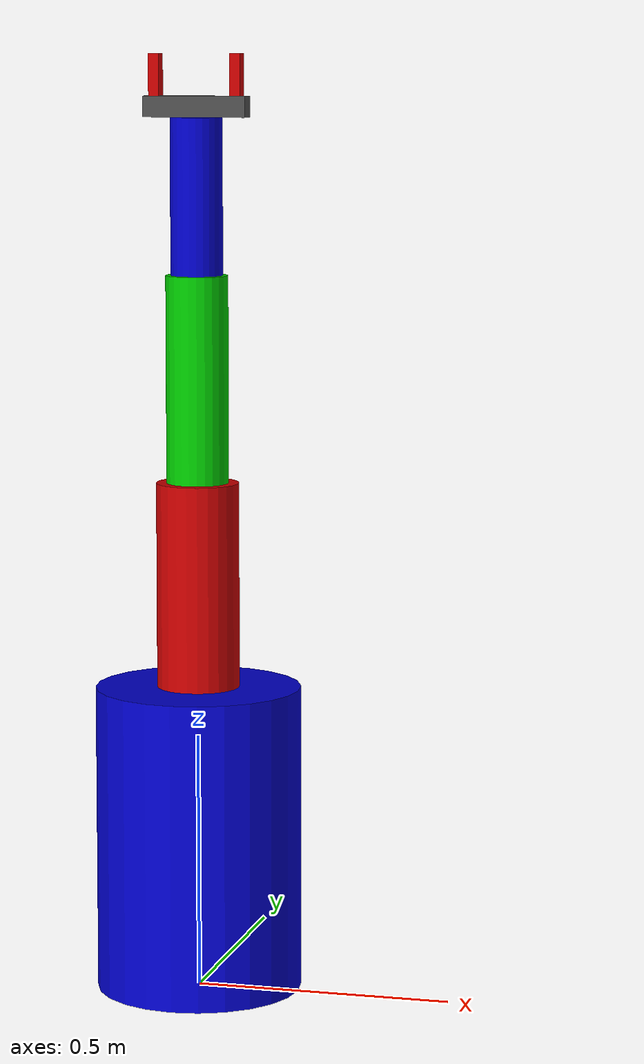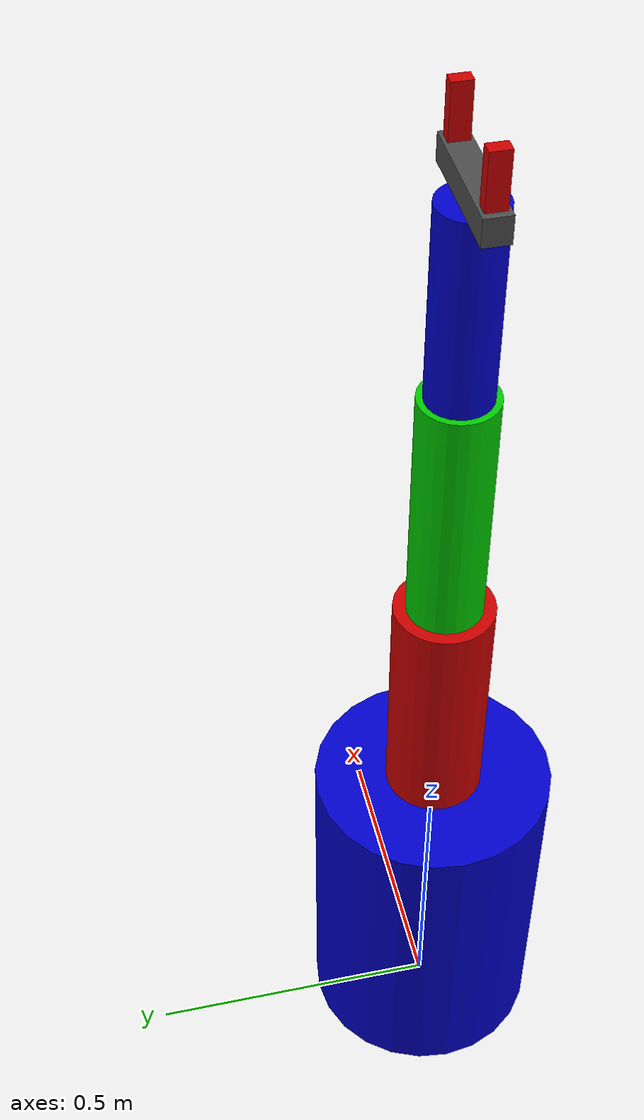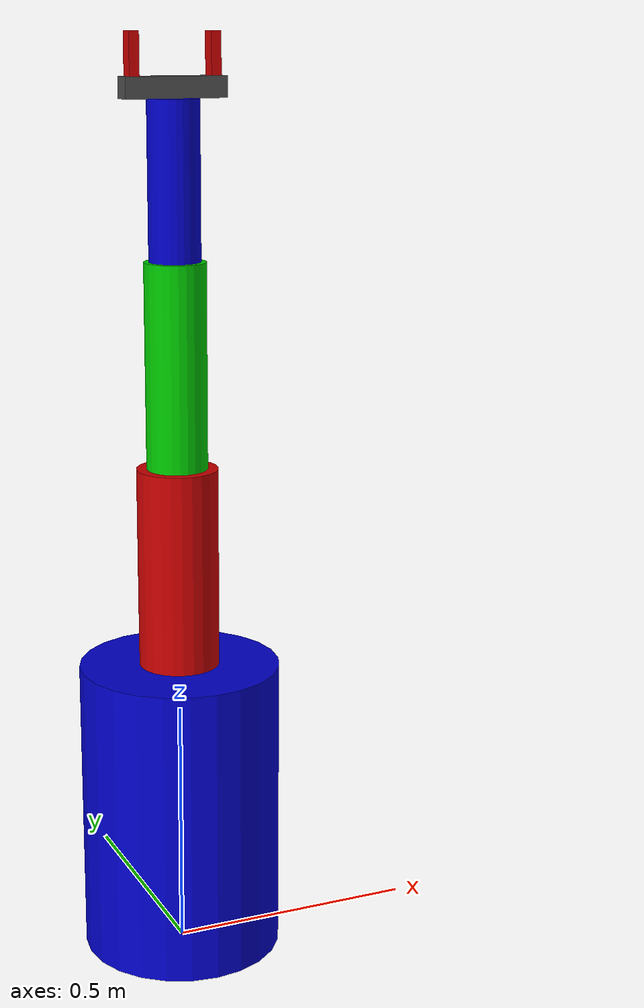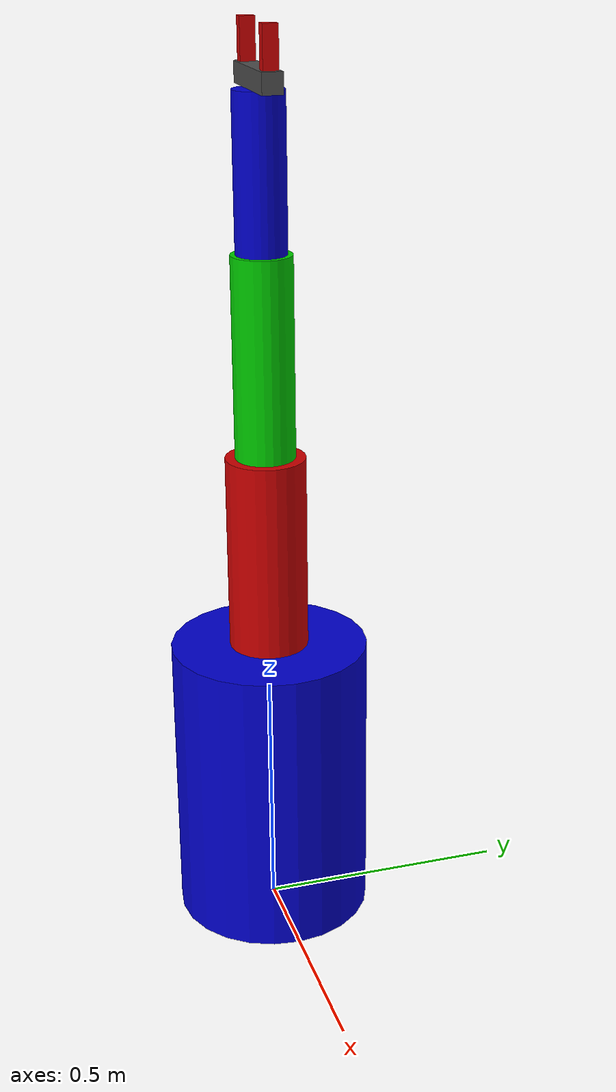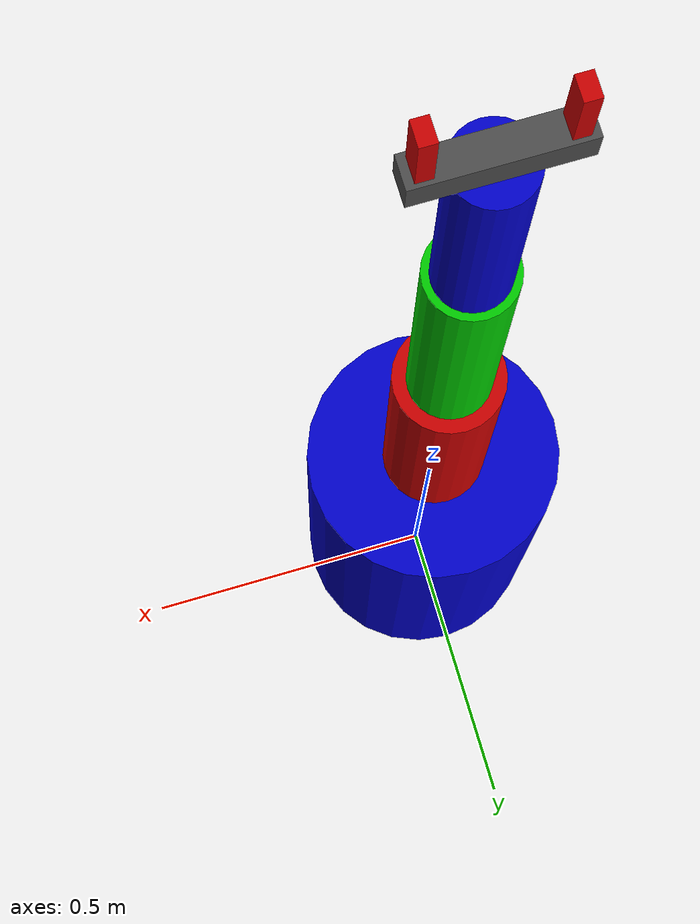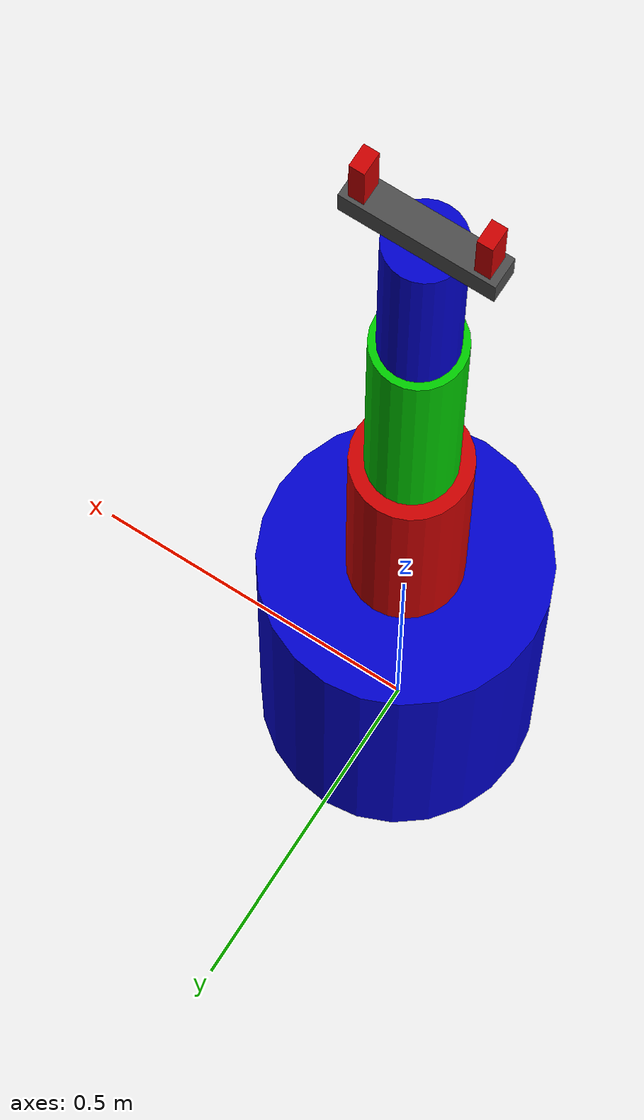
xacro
<?xml version="1.0"?>
<robot xmlns:xacro="http://www.ros.org/wiki/xacro" name="bulls_bot">

  <xacro:property name="b_rad" value="0.2" /><xacro:property name="b_len" value="0.6" />
  <xacro:property name="l1_rad" value="0.08" /><xacro:property name="l1_len" value="0.4" />
  <xacro:property name="l2_rad" value="0.06" /><xacro:property name="l2_len" value="0.4" />
  <xacro:property name="l3_rad" value="0.05" /><xacro:property name="l3_len" value="0.3" />

  <material name="blue"><color rgba="0.0 0.0 0.8 1.0" /></material>
  <material name="red"><color rgba="0.8 0.0 0.0 1.0" /></material>
  <material name="green"><color rgba="0.0 0.8 0.0 1.0" /></material>
  <material name="dark_grey"><color rgba="0.3 0.3 0.3 1.0" /></material>

  <xacro:macro name="make_link" params="name radius length color">
    <link name="${name}">
      <visual>
        <origin xyz="0 0 ${length/2}" rpy="0 0 0" />
        <geometry><cylinder radius="${radius}" length="${length}" /></geometry>
        <material name="${color}" />
      </visual>
      <collision>
        <origin xyz="0 0 ${length/2}" rpy="0 0 0" />
        <geometry><cylinder radius="${radius}" length="${length}" /></geometry>
      </collision>
    </link>
  </xacro:macro>

  <link name="base_link">
    <visual>
      <origin xyz="0 0 ${b_len/2}" rpy="0 0 0" />
      <geometry><cylinder radius="${b_rad}" length="${b_len}" /></geometry>
      <material name="blue" />
    </visual>
    <collision>
      <origin xyz="0 0 ${b_len/2}" rpy="0 0 0" />
      <geometry><cylinder radius="${b_rad}" length="${b_len}" /></geometry>
    </collision>
  </link>

  <xacro:make_link name="link_1" radius="${l1_rad}" length="${l1_len}" color="red" />
  <xacro:make_link name="link_2" radius="${l2_rad}" length="${l2_len}" color="green" />
  <xacro:make_link name="link_3" radius="${l3_rad}" length="${l3_len}" color="blue" />

  <joint name="arm_0_joint" type="revolute">
    <parent link="base_link"/><child link="link_1"/>
    <origin xyz="0 0 ${b_len}" rpy="0 0 0"/>
    <axis xyz="0 0 1"/>
    <limit lower="-3.1416" upper="3.1416" effort="10.0" velocity="1.0"/>
  </joint>

  <joint name="arm_1_joint" type="revolute">
    <parent link="link_1"/><child link="link_2"/>
    <origin xyz="0 0 ${l1_len}" rpy="0 0 0"/>
    <axis xyz="0 1 0"/>
    <limit lower="-1.5708" upper="1.5708" effort="10.0" velocity="1.0"/>
  </joint>

  <joint name="arm_2_joint" type="revolute">
    <parent link="link_2"/><child link="link_3"/>
    <origin xyz="0 0 ${l2_len}" rpy="0 0 0"/>
    <axis xyz="0 1 0"/>
    <limit lower="-2.0" upper="2.0" effort="10.0" velocity="1.0"/>
  </joint>

  <joint name="gripper_base_joint" type="fixed">
    <parent link="link_3"/><child link="gripper_base"/>
    <origin xyz="0 0 ${l3_len}" rpy="0 0 0"/>
  </joint>

  <link name="gripper_base">
    <visual>
      <origin xyz="0 0 0.02" rpy="0 0 0" /><geometry><box size="0.2 0.04 0.04" /></geometry>
      <material name="dark_grey" />
    </visual>
    <collision>
      <origin xyz="0 0 0.02" rpy="0 0 0" /><geometry><box size="0.2 0.04 0.04" /></geometry>
    </collision>
  </link>

  <joint name="gripper_finger_joint_1" type="prismatic">
    <parent link="gripper_base"/><child link="left_finger"/>
    <origin xyz="-0.08 0 0.04" rpy="0 0 0"/><axis xyz="1 0 0"/>
    <limit lower="0.0" upper="0.06" effort="5.0" velocity="0.5"/>
  </joint>

  <link name="left_finger">
    <visual>
      <origin xyz="0 0 0.04" rpy="0 0 0" /><geometry><box size="0.02 0.03 0.08" /></geometry>
      <material name="red" />
    </visual>
    <collision>
      <origin xyz="0 0 0.04" rpy="0 0 0" /><geometry><box size="0.02 0.03 0.08" /></geometry>
    </collision>
  </link>

  <joint name="gripper_finger_joint_2" type="prismatic">
    <parent link="gripper_base"/><child link="right_finger"/>
    <origin xyz="0.08 0 0.04" rpy="0 0 0"/><axis xyz="-1 0 0"/>
    <limit lower="0.0" upper="0.06" effort="5.0" velocity="0.5"/>
  </joint>

  <link name="right_finger">
    <visual>
      <origin xyz="0 0 0.04" rpy="0 0 0" /><geometry><box size="0.02 0.03 0.08" /></geometry>
      <material name="red" />
    </visual>
    <collision>
      <origin xyz="0 0 0.04" rpy="0 0 0" /><geometry><box size="0.02 0.03 0.08" /></geometry>
    </collision>
  </link>

</robot>
